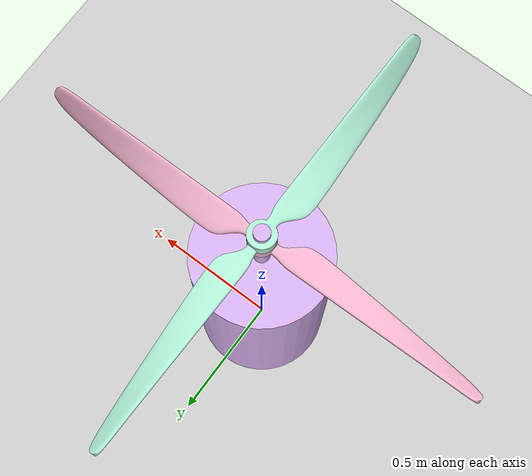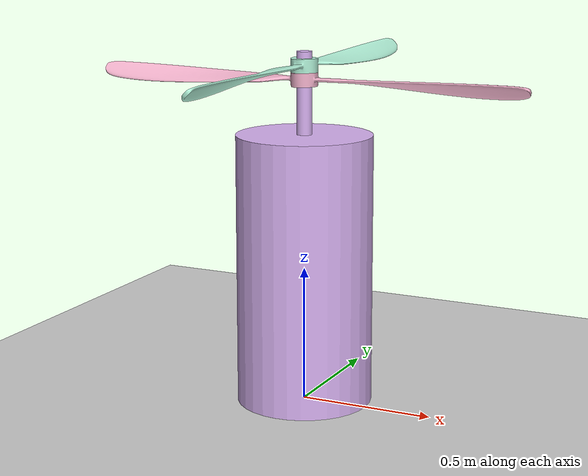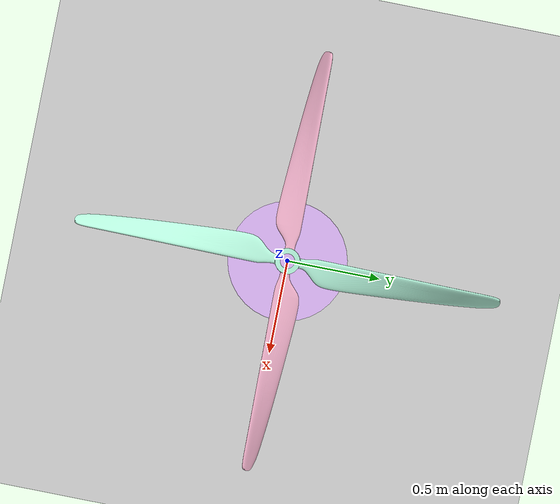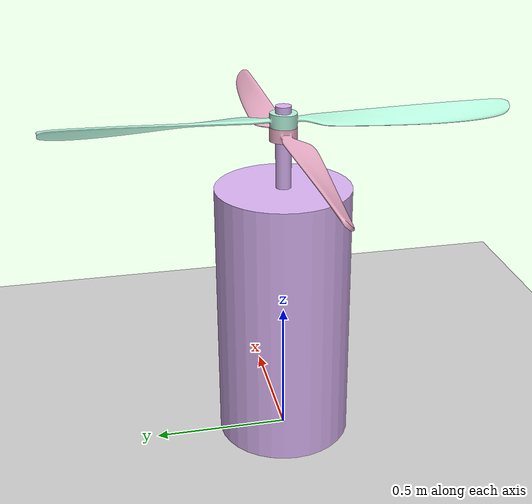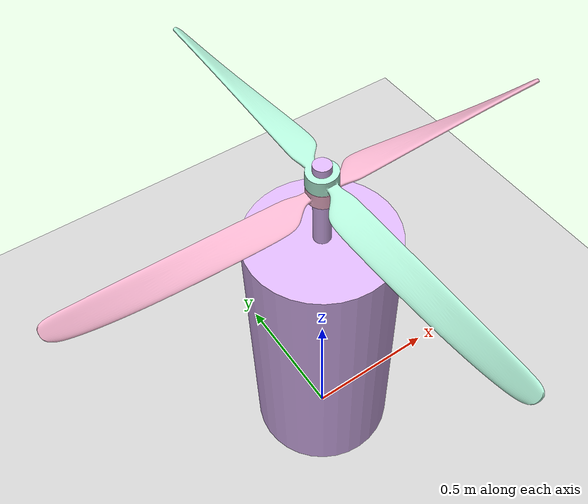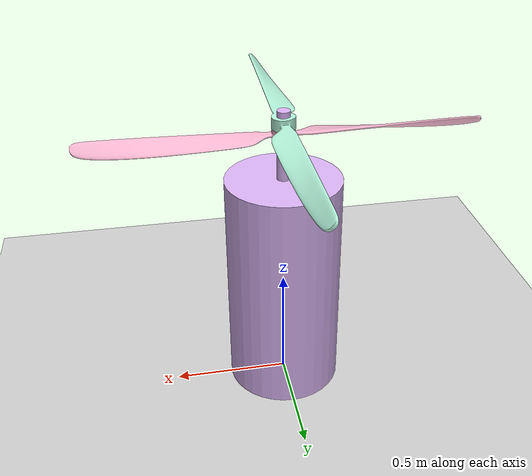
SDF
<?xml version="1.0" ?>
<sdf version="1.7">
  <world name="flying_cylinder_world">

	<physics name="4ms" type="ode">
	  <max_step_size>0.004</max_step_size>
	  <real_time_factor>1.0</real_time_factor>
	</physics>

	<plugin
	  filename="gz-sim-physics-system"
	  name="gz::sim::systems::Physics">
	</plugin>

	<plugin
	  filename="gz-sim-scene-broadcaster-system"
	  name="gz::sim::systems::SceneBroadcaster">
	</plugin>

	<plugin
	  filename="gz-sim-user-commands-system"
	  name="gz::sim::systems::UserCommands">
	</plugin>

	<plugin
	  filename="gz-sim-sensors-system"
	  name="gz::sim::systems::Sensors">
	  <render_engine>ogre2</render_engine>
	</plugin>

	<plugin
	  filename="gz-sim-imu-system"
	  name="gz::sim::systems::Imu">
	</plugin>

    <include>
      <uri>model://sun</uri>
    </include>

    <include>
      <uri>model://ground_plane</uri>
    </include>

    <include>
      <uri>model://flying_cylinder</uri>
      <pose>0 0 0 0 0 0</pose>

	  <plugin
	  filename="gz-sim-multicopter-motor-model-system"
	  name="gz::sim::systems::MulticopterMotorModel">
        <robotNamespace>flying_cylinder</robotNamespace>
        <jointName>rotor_0_joint</jointName>
        <linkName>rotor_0</linkName>
        <turningDirection>ccw</turningDirection>
        <timeConstantUp>0.0125</timeConstantUp>
        <timeConstantDown>0.025</timeConstantDown>
        <maxRotVelocity>2000.0</maxRotVelocity>
        <motorConstant>1.5e-05</motorConstant>
        <momentConstant>0.016</momentConstant>
        <commandSubTopic>gazebo/command/motor_speed</commandSubTopic>
        <motorNumber>0</motorNumber>
        <rotorDragCoefficient>8.06428e-05</rotorDragCoefficient>
        <rollingMomentCoefficient>1e-06</rollingMomentCoefficient>
        <motorSpeedPubTopic>motor_speed/0</motorSpeedPubTopic>
        <rotorVelocitySlowdownSim>10</rotorVelocitySlowdownSim>
        <motorType>velocity</motorType>
      </plugin>

      <plugin
        filename="ignition-gazebo-multicopter-motor-model-system"
        name="ignition::gazebo::systems::MulticopterMotorModel">
        <robotNamespace>flying_cylinder</robotNamespace>
        <jointName>rotor_1_joint</jointName>
        <linkName>rotor_1</linkName>
        <turningDirection>cw</turningDirection>
        <timeConstantUp>0.0125</timeConstantUp>
        <timeConstantDown>0.025</timeConstantDown>
        <maxRotVelocity>2000.0</maxRotVelocity>
        <motorConstant>1.5e-05</motorConstant>
        <momentConstant>0.016</momentConstant>
        <commandSubTopic>gazebo/command/motor_speed</commandSubTopic>
        <motorNumber>0</motorNumber>
        <rotorDragCoefficient>8.06428e-05</rotorDragCoefficient>
        <rollingMomentCoefficient>1e-06</rollingMomentCoefficient>
        <motorSpeedPubTopic>motor_speed/1</motorSpeedPubTopic>
        <rotorVelocitySlowdownSim>10</rotorVelocitySlowdownSim>
        <motorType>velocity</motorType>
      </plugin>
    </include>

  </world>
</sdf>

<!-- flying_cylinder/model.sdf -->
<sdf version="1.7">
  <model name="flying_cylinder">
    <static>false</static>
    <pose>0 0 0 0 0 0</pose>

    <!-- Main body -->
    <link name="base_link">
      <pose>0 0 0 0 0 0</pose>

      <inertial>
        <pose>0 0 0 0 0 0</pose>
        <mass>2.0</mass>
        <inertia>
          <ixx>0.05</ixx>
          <iyy>0.05</iyy>
          <izz>0.02</izz>
          <ixy>0</ixy>
          <ixz>0</ixz>
          <iyz>0</iyz>
        </inertia>
      </inertial>

      <collision name="base_collision">
        <pose>0 0 0 0 0 0</pose>
        <geometry>
          <mesh>
            <uri>model://flying_cylinder/meshes/cylinder.dae</uri>
          </mesh>
        </geometry>
      </collision>

      <visual name="base_visual">
        <pose>0 0 0 0 0 0</pose>
        <geometry>
          <mesh>
            <uri>model://flying_cylinder/meshes/cylinder.dae</uri>
          </mesh>
        </geometry>
		<material>
		  <ambient>0.85 0.7 0.95 1</ambient>
		  <diffuse>0.85 0.7 0.95 1</diffuse>
		  <specular>0.1 0.1 0.1 1</specular>
		</material>
      </visual>

      <sensor name="imu_sensor" type="imu">
        <always_on>1</always_on>
        <update_rate>250</update_rate>
        <visualize>true</visualize>
        <topic>imu</topic>
      </sensor>
    </link>

    <!-- Rotor 0-->
    <link name="rotor_0">
      <pose>0 0 0 0 0 0</pose>

      <inertial>
        <pose>0 0 0 0 0 0</pose>
        <mass>0.1</mass>
        <inertia>
          <ixx>0.002</ixx>
          <iyy>0.002</iyy>
          <izz>0.004</izz>
          <ixy>0</ixy>
          <ixz>0</ixz>
          <iyz>0</iyz>
        </inertia>
      </inertial>

      <collision name="rotor_collision">
        <pose>0 0 0 0 0 0</pose>
        <geometry>
          <mesh>
            <uri>model://flying_cylinder/meshes/propellerCCW.dae</uri>
          </mesh>
        </geometry>
      </collision>

      <visual name="rotor_visual">
        <pose>0 0 0 0 0 0</pose>
        <geometry>
          <mesh>
            <uri>model://flying_cylinder/meshes/propellerCCW.dae</uri>
          </mesh>
        </geometry>
        <material>
          <ambient>0.7 0.95 0.85 1</ambient>
          <diffuse>0.7 0.95 0.85 1</diffuse>
          <specular>0.1 0.1 0.1 1</specular>
        </material>
      </visual>
    </link>

    <joint name="rotor_0_joint" type="revolute">
      <parent>base_link</parent>
      <child>rotor_0</child>
      <axis>
        <xyz>0 0 1</xyz>
        <limit>
          <lower>-1e16</lower>
          <upper>1e16</upper>
        </limit>
        <dynamics>
          <spring_reference>0</spring_reference>
          <spring_stiffness>0</spring_stiffness>
          <damping>0.001</damping>
        </dynamics>
        <use_parent_model_frame>1</use_parent_model_frame>
      </axis>
    </joint>

    <!-- Rotor 1-->
    <link name="rotor_1">
      <pose>0 0 0 0 0 0</pose>

      <inertial>
        <pose>0 0 0 0 0 0</pose>
        <mass>0.1</mass>
        <inertia>
          <ixx>0.002</ixx>
          <iyy>0.002</iyy>
          <izz>0.004</izz>
          <ixy>0</ixy>
          <ixz>0</ixz>
          <iyz>0</iyz>
        </inertia>
      </inertial>

      <collision name="rotor_collision">
        <pose>0 0 0 0 0 0</pose>
        <geometry>
         <mesh>
            <uri>model://flying_cylinder/meshes/propellerCW.dae</uri>
          </mesh>
        </geometry>
      </collision>

      <visual name="rotor_visual">
        <pose>0 0 0 0 0 0</pose>
        <geometry>
          <mesh>
            <uri>model://flying_cylinder/meshes/propellerCW.dae</uri>
          </mesh>
        </geometry>
        <material>
          <ambient>0.95 0.7 0.8 1</ambient>
          <diffuse>0.95 0.7 0.8 1</diffuse>
          <specular>0.1 0.1 0.1 1</specular>
        </material>
      </visual>
    </link>

    <joint name="rotor_1_joint" type="revolute">
      <parent>base_link</parent>
      <child>rotor_1</child>
      <axis>
        <xyz>0 0 1</xyz>
        <limit>
          <lower>-1e16</lower>
          <upper>1e16</upper>
        </limit>
        <dynamics>
          <spring_reference>0</spring_reference>
          <spring_stiffness>0</spring_stiffness>
          <damping>0.001</damping>
        </dynamics>
        <use_parent_model_frame>1</use_parent_model_frame>
      </axis>
    </joint>

  </model>
</sdf>
